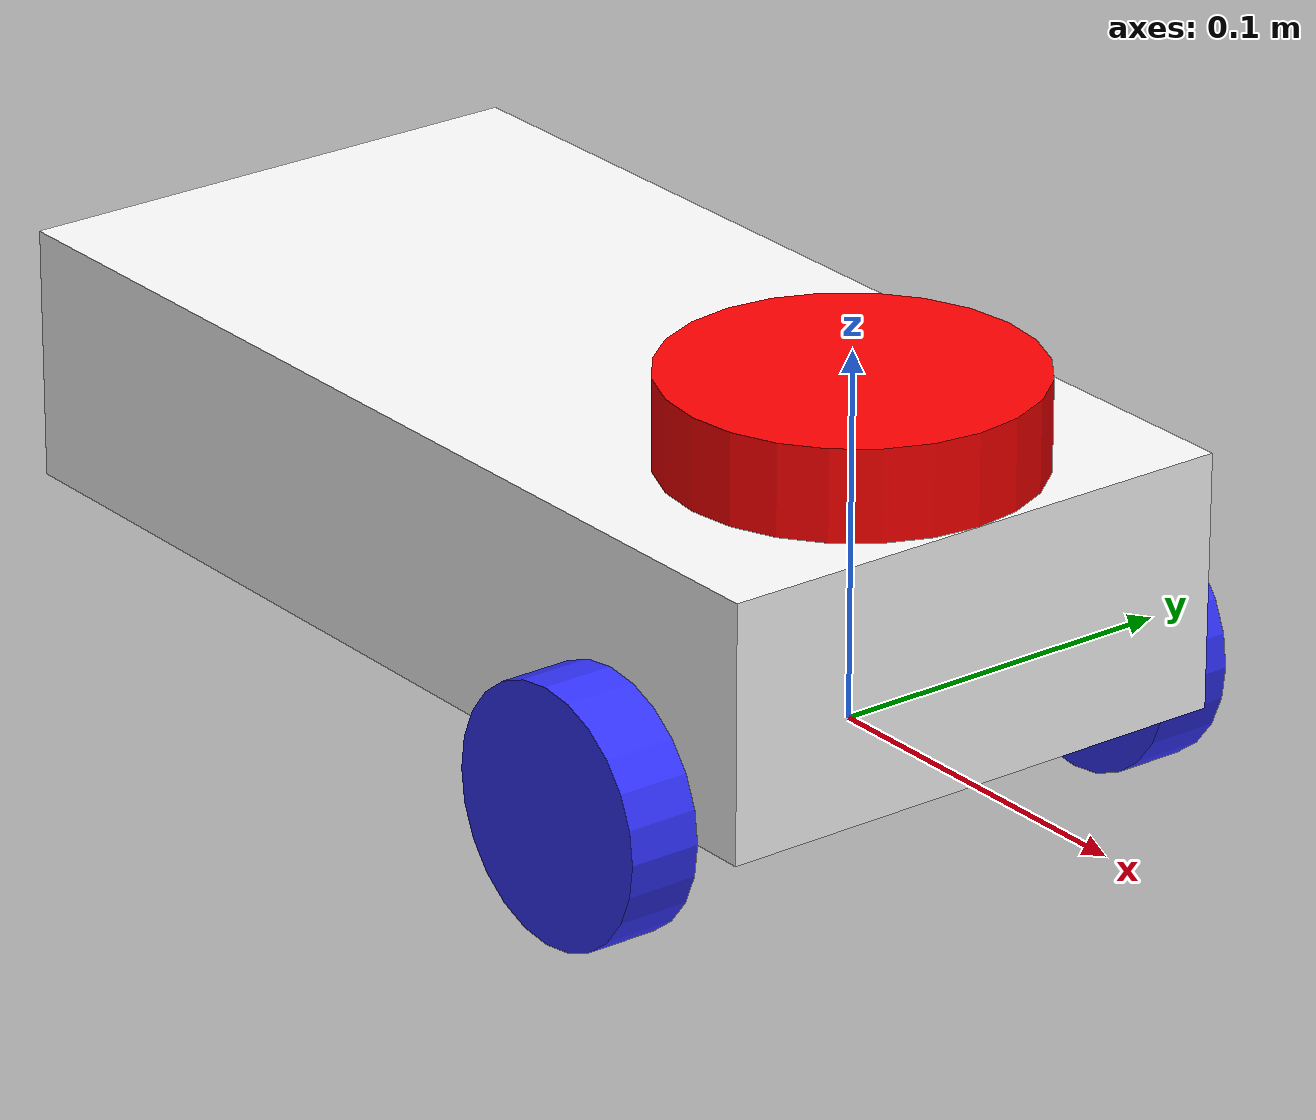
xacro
<?xml version="1.0"?>
<robot xmlns:xacro="http://www.ros.org/wiki/xacro"  name="robot">

    <xacro:arg name="use_ros2_control" default="true"/>
    <xacro:arg name="sim_mode" default="false"/>

    <xacro:include filename="femto_agv_core.xacro" />

    <xacro:if value="$(arg use_ros2_control)">
        <xacro:include filename="ros2_control.xacro" />
    </xacro:if>
    <xacro:unless value="$(arg use_ros2_control)">
        <xacro:include filename="gazebo_control.xacro" />
    </xacro:unless>
    <xacro:include filename="lidar.xacro" />

</robot>

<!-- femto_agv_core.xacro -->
<robot xmlns:xacro="http://www.ros.org/wiki/xacro">

    <xacro:include filename="inertial_macros.xacro"/>

    <material name="white">
        <color rgba="1 1 1 1" />
    </material>

    <material name="orange">
        <color rgba="1 0.3 0.1 1" />
    </material>

    <material name="blue">
        <color rgba="0.2 0.2 1 1" />
    </material>

    <material name="black">
        <color rgba="0 0 0 1" />
    </material>

    <material name="red">
        <color rgba="1 0 0 1" />
    </material>

    <!-- BASE LINK -->

    <link name="base_link">

    </link>

    <!-- BASE_FOOTPRINT LINK -->

    <joint name="base_footprint_joint" type="fixed">
        <parent link="base_link" />
        <child link="base_footprint" />
        <origin xyz="0 0 0" rpy="0 0 0"/>
    </joint>

    <link name="base_footprint">
    </link>

    <!-- CHASSIS LINK -->

    <joint name="chassis_joint" type="fixed">
        <parent link="base_link" />
        <child link="chassis" />
        <origin xyz="-0.25 0 0" />
    </joint>

    <link name="chassis">
        <visual>
            <origin xyz="0.15 0 0.035" />
            <geometry>
                <box size="0.3 0.15 0.07" />
            </geometry>
            <material name="white" />
        </visual>
        <collison>
            <origin xyz="0.15 0 0.035" />
            <geometry>
                <box size="0.3 0.15 0.07" />
            </geometry>
        </collison>
        <xacro:inertial_box mass="0.5" x="0.3" y="0.15" z="0.7">
            <origin xyz="0.15 0 0.035" rpy="0 0 0"/>
        </xacro:inertial_box>
    </link>

    <!-- LEFT WHEEL LINK -->

    <joint name="left_wheel_joint" type="continuous">
        <parent link="base_link"/>
        <child link="left_wheel"/>
        <origin xyz="0 0.085 0" rpy="-${pi/2} 0 0" />
        <axis xyz="0 0 1"/>
    </joint>

    <link name="left_wheel">
        <visual>
            <geometry>
                <cylinder radius="0.035" length="0.02"/>
            </geometry>
            <material name="blue"/>
        </visual>
        <collison>
            <geometry>
                <cylinder radius="0.035" length="0.02"/>
            </geometry>
        </collison>
        <xacro:inertial_cylinder mass="0.1" length="0.2" radius="0.035">
            <origin xyz="0 0 0" rpy="0 0 0"/>
        </xacro:inertial_cylinder>
    </link>

    <!-- RIGHT WHEEL LINK -->

    <joint name="right_wheel_joint" type="continuous">
        <parent link="base_link"/>
        <child link="right_wheel"/>
        <origin xyz="0 -0.085 0" rpy="${pi/2} 0 0" />
        <axis xyz="0 0 -1"/>
    </joint>

    <link name="right_wheel">
        <visual>
            <geometry>
                <cylinder radius="0.035" length="0.02"/>
            </geometry>
            <material name="blue"/>
        </visual>
        <collison>
            <geometry>
                <cylinder radius="0.035" length="0.02"/>
            </geometry>
        </collison>
        <xacro:inertial_cylinder mass="0.1" length="0.2" radius="0.035">
            <origin xyz="0 0 0" rpy="0 0 0"/>
        </xacro:inertial_cylinder>
    </link>

    <!-- CASTER WHEEL LINK -->
    <joint name="caster_wheel_joint" type="fixed">
        <parent link="chassis"/>
        <child link="caster_wheel"/>
        <origin xyz="0.03 0 -0.01"/>
    </joint>

    <link name="caster_wheel">
        <visual>
            <geometry>
                <sphere radius="0.02"/>
            </geometry>
            <material name="black"/>
        </visual>
        <collison>
            <geometry>
                <sphere radius="0.02"/>
            </geometry>
        </collison>
        <xacro:inertial_sphere mass="0.1" radius="0.02">
            <origin xyz="0 0 0" rpy="0 0 0"/>
        </xacro:inertial_sphere>
    </link>

</robot>

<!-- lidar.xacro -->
<robot xmlns:xacro="http://www.ros.org/wiki/xacro" >

    <joint name="laser_joint" type="fixed">
        <parent link="chassis"/>
        <child link="laser_frame"/>
        <origin xyz="0.25 0 0.075" rpy="0 0 ${pi}"/> <!-- Flipping by 180 degrees around z-axis -->
    </joint>

    <link name="laser_frame">
        <visual>
            <geometry>
                <cylinder radius="0.05" length="0.04"/>
            </geometry>
            <material name="red"/>
        </visual>
        <visual>
            <origin xyz="0 0 -0.05"/>
            <geometry>
                <cylinder radius="0.01" length="0.1"/>
            </geometry>
            <material name="red"/>
        </visual>
        <collision>
            <geometry>
                <cylinder radius="0.05" length="0.04"/>
            </geometry>
        </collision>
        <xacro:inertial_cylinder mass="0.1" length="0.04" radius="0.05">
            <origin xyz="0 0 0" rpy="0 0 0"/>
        </xacro:inertial_cylinder>
    </link>
</robot>
